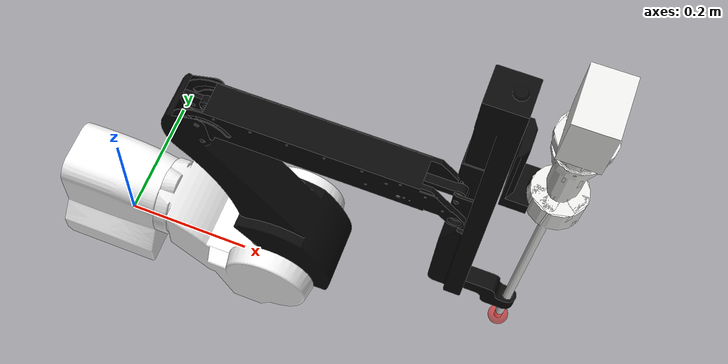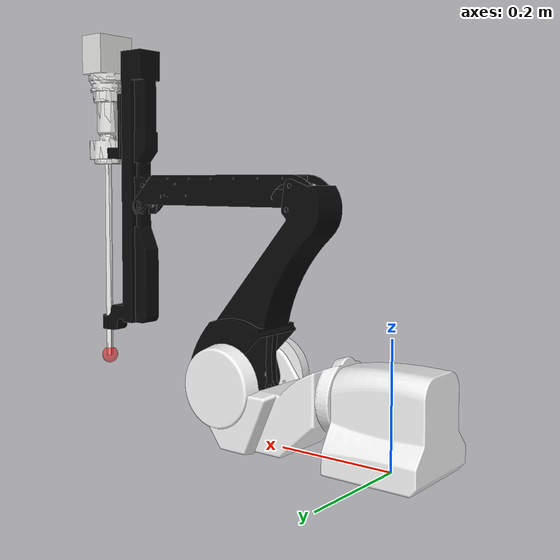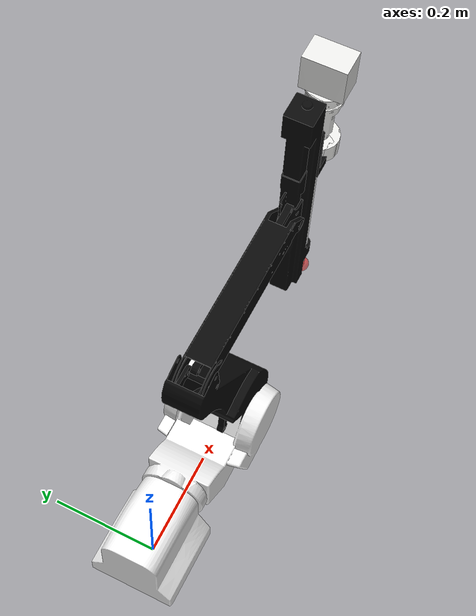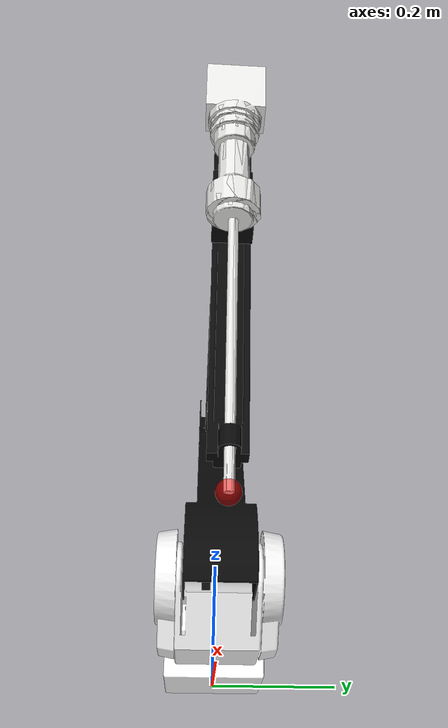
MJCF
<mujoco model="ecm">
  <compiler angle="radian" boundmass="1e-08" boundinertia="1e-10" alignfree="true" />
  <option timestep="0.002" iterations="80" integrator="implicitfast" />
  <asset>
    <mesh name="base_link" content_type="model/obj" file="meshes/visual/base_link.obj" />
    <mesh name="yaw_link" content_type="model/obj" file="meshes/visual/yaw_link.obj" />
    <mesh name="pitch_end_link" content_type="model/stl" file="meshes/visual/pitch_end_link.STL" />
    <mesh name="main_insertion_link" content_type="model/stl" file="meshes/visual/main_insertion_link.STL" />
    <mesh name="tool_link_1" content_type="model/obj" file="meshes/visual/tool_link_1.obj" />
    <mesh name="tool_link" content_type="model/stl" file="meshes/collision/tool_link.STL" />
    <mesh name="pitch_front_link" content_type="model/stl" file="meshes/visual/pitch_front_link.STL" />
    <mesh name="pitch_bottom_link" content_type="model/stl" file="meshes/visual/pitch_bottom_link.STL" />
    <mesh name="pitch_top_link" content_type="model/stl" file="meshes/visual/pitch_top_link.STL" />
    <mesh name="pitch_back_link" content_type="model/stl" file="meshes/visual/pitch_back_link.STL" />
  </asset>
  <worldbody>
    <geom type="mesh" contype="0" conaffinity="0" group="1" density="0" rgba="0.95 0.95 0.95 1" mesh="base_link" />
    <geom size="0.015" pos="0.6126 0 0.1016" quat="0.707107 0 0 -0.707107" contype="0" conaffinity="0" group="1" density="0" rgba="1 0 0 0.5" />
    <body name="ecm_yaw_link" pos="0.6126 0 0.1016" quat="0.707107 0 -0.707107 0">
      <inertial pos="-0.029 0 0.4327" quat="0.704016 -0.0660432 0.0660432 0.704016" mass="6.4168" diaginertia="0.00112403 0.00112403 0.00112403" />
      <joint name="ecm_yaw_joint" pos="0 0 0" axis="0 0 1" range="-1.5708 1.5708" actuatorfrcrange="-100 100" damping="2" armature="0.02" frictionloss="0.01" />
      <geom pos="0 0 0.5394" quat="0 0.707107 0.707107 0" type="mesh" contype="0" conaffinity="0" group="1" density="0" rgba="0.95 0.95 0.95 1" mesh="yaw_link" />
      <body name="ecm_pitch_end_link" quat="0.5 -0.5 -0.5 -0.5">
        <inertial pos="0.0773202 0.292573 0.00079042" quat="-0.481871 0.517567 0.481787 0.5175" mass="1.60661" diaginertia="0.0379227 0.0374638 0.000939149" />
        <joint name="ecm_pitch_end_joint" pos="0 0 0" axis="0 0 1" range="-0.784 1.158" actuatorfrcrange="-100 100" damping="2" armature="0.02" frictionloss="0.01" />
        <geom pos="0.103 0.2868 0" quat="0 0 0 1" type="mesh" contype="0" conaffinity="0" group="1" density="0" rgba="0.0314 0.0314 0.0314 1" mesh="pitch_end_link" />
        <geom pos="0.103 0.2868 0" quat="0 0 0 1" type="mesh" rgba="0.0314 0.0314 0.0314 1" mesh="pitch_end_link" />
        <body name="ecm_main_insertion_link" pos="0 0.3822 0" quat="0.707107 0.707107 0 0">
          <inertial pos="0.0508919 0.000792275 -0.0349639" quat="-5.68674e-07 -0.0552451 -1.02779e-05 0.998473" mass="0.10076" diaginertia="0.00014273 0.000125085 2.60095e-05" />
          <joint name="ecm_main_insertion_joint" pos="0 0 0" axis="0 0 1" type="slide" range="0 0.254" actuatorfrcrange="-50 50" damping="2" armature="0.02" frictionloss="0.01" />
          <geom pos="0.061 0 0.0092" quat="0 0 0 1" type="mesh" contype="0" conaffinity="0" group="1" density="0" rgba="0.0314 0.0314 0.0314 1" mesh="main_insertion_link" />
          <geom pos="0.061 0 0.0092" quat="0 0 0 1" type="mesh" rgba="0.0314 0.0314 0.0314 1" mesh="main_insertion_link" />
          <body name="ecm_tool_link" pos="0 0 0.3829">
            <inertial pos="-0.000175498 0.000750871 -0.481392" quat="1 -0.000428739 0.000193793 0.000603273" mass="0.877414" diaginertia="0.00806451 0.00796635 0.000456048" />
            <joint name="ecm_tool_joint" pos="0 0 0" axis="0 0 1" range="-1.5708 1.5708" actuatorfrcrange="-100 100" damping="2" armature="0.02" frictionloss="0.01" />
            <geom pos="0 0 -0.3737" quat="0 0 0 1" type="mesh" contype="0" conaffinity="0" group="1" density="0" rgba="0.8941 0.8941 0.8863 1" mesh="tool_link_1" />
            <geom pos="0 0 -0.3737" quat="0 0 0 1" type="mesh" rgba="0.8941 0.8941 0.8863 1" mesh="tool_link" />
          </body>
        </body>
      </body>
      <body name="ecm_pitch_front_link" pos="0 0 0.3404" quat="0.5 -0.5 -0.5 -0.5">
        <inertial pos="0.0306 0.1358 0" quat="0 0 0 1" mass="1.6069" diaginertia="1e-10 1e-10 1e-10" />
        <joint name="ecm_pitch_front_joint" pos="0 0 0" axis="0 0 1" range="-0.784 1.158" actuatorfrcrange="-100 100" damping="2" armature="0.02" frictionloss="0.01" />
        <geom pos="0 0 0" quat="0 0 0 1" type="mesh" contype="0" conaffinity="0" group="1" density="0" rgba="0.0314 0.0314 0.0314 1" mesh="pitch_front_link" />
        <body name="ecm_pitch_bottom_link" pos="0.103 0.2868 0">
          <inertial pos="-0.1459 0.0267 0" quat="0.519941 0.519941 0.47923 0.47923" mass="0.3593" diaginertia="0.00302818 0.0029617 0.000220426" />
          <joint name="ecm_pitch_bottom_joint" pos="0 0 0" axis="0 0 1" range="-1.158 0.784" actuatorfrcrange="-100 100" damping="2" armature="0.02" frictionloss="0.01" />
          <geom pos="0 0 0" quat="0 0 0 1" type="mesh" contype="0" conaffinity="0" group="1" density="0" rgba="0.0314 0.0314 0.0314 1" mesh="pitch_bottom_link" />
        </body>
        <body name="ecm_pitch_top_link" pos="0.1085 0.3242 0">
          <inertial pos="-0.1702 0 0" quat="0 0 0 1" mass="0.4385" diaginertia="1e-10 1e-10 1e-10" />
          <joint name="ecm_pitch_top_joint" pos="0 0 0" axis="0 0 1" range="-1.158 0.784" actuatorfrcrange="-100 100" damping="2" armature="0.02" frictionloss="0.01" />
          <geom pos="0 0 0" quat="0 0 0 1" type="mesh" contype="0" conaffinity="0" group="1" density="0" rgba="0.0314 0.0314 0.0314 1" mesh="pitch_top_link" />
        </body>
      </body>
      <body name="ecm_pitch_back_link" pos="-0.0098 0 0.377" quat="0.5 -0.5 -0.5 -0.5">
        <inertial pos="0.0329 0.15 0" quat="0 0 0 1" mass="0.4214" diaginertia="1e-10 1e-10 1e-10" />
        <joint name="ecm_pitch_back_joint" pos="0 0 0" axis="0 0 1" range="-0.784 1.158" actuatorfrcrange="-100 100" damping="2" armature="0.02" frictionloss="0.01" />
        <geom pos="0 0 0" quat="0 0 0 1" type="mesh" contype="0" conaffinity="0" group="1" density="0" rgba="0.0314 0.0314 0.0314 1" mesh="pitch_back_link" />
      </body>
    </body>
  </worldbody>
  <contact>
    <exclude body1="ecm_pitch_end_link" body2="ecm_tool_link" />
  </contact>
  <equality>
    <joint name="eq_ecm_pitch_front_joint" joint1="ecm_pitch_front_joint" joint2="ecm_pitch_end_joint" polycoef="0 1 0 0 0" solref="0.005 1" />
    <joint name="eq_ecm_pitch_bottom_joint" joint1="ecm_pitch_bottom_joint" joint2="ecm_pitch_end_joint" polycoef="0 -1 0 0 0" solref="0.005 1" />
    <joint name="eq_ecm_pitch_top_joint" joint1="ecm_pitch_top_joint" joint2="ecm_pitch_end_joint" polycoef="0 -1 0 0 0" solref="0.005 1" />
    <joint name="eq_ecm_pitch_back_joint" joint1="ecm_pitch_back_joint" joint2="ecm_pitch_end_joint" polycoef="0 1 0 0 0" solref="0.005 1" />
  </equality>
  <actuator>
    <position name="ctrl_ecm_yaw_joint" joint="ecm_yaw_joint" kp="60" ctrlrange="-1.5708 1.5708" forcelimited="true" forcerange="-80 80" />
    <position name="ctrl_ecm_pitch_end_joint" joint="ecm_pitch_end_joint" kp="60" ctrlrange="-0.784 1.158" forcelimited="true" forcerange="-80 80" />
    <position name="ctrl_ecm_main_insertion_joint" joint="ecm_main_insertion_joint" kp="400" ctrlrange="0 0.254" forcelimited="true" forcerange="-120 120" />
    <position name="ctrl_ecm_tool_joint" joint="ecm_tool_joint" kp="60" ctrlrange="-1.5708 1.5708" forcelimited="true" forcerange="-80 80" />
  </actuator>
</mujoco>
